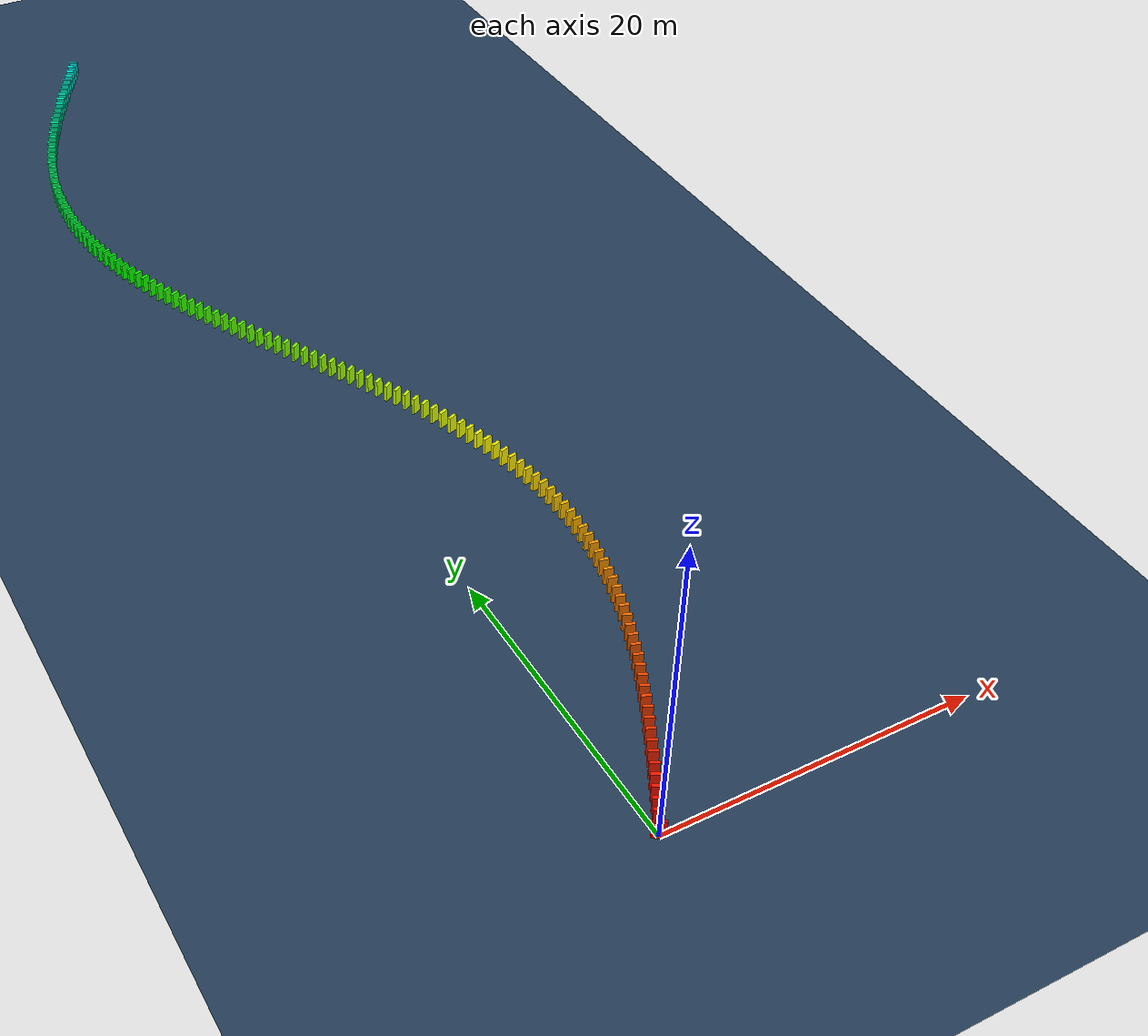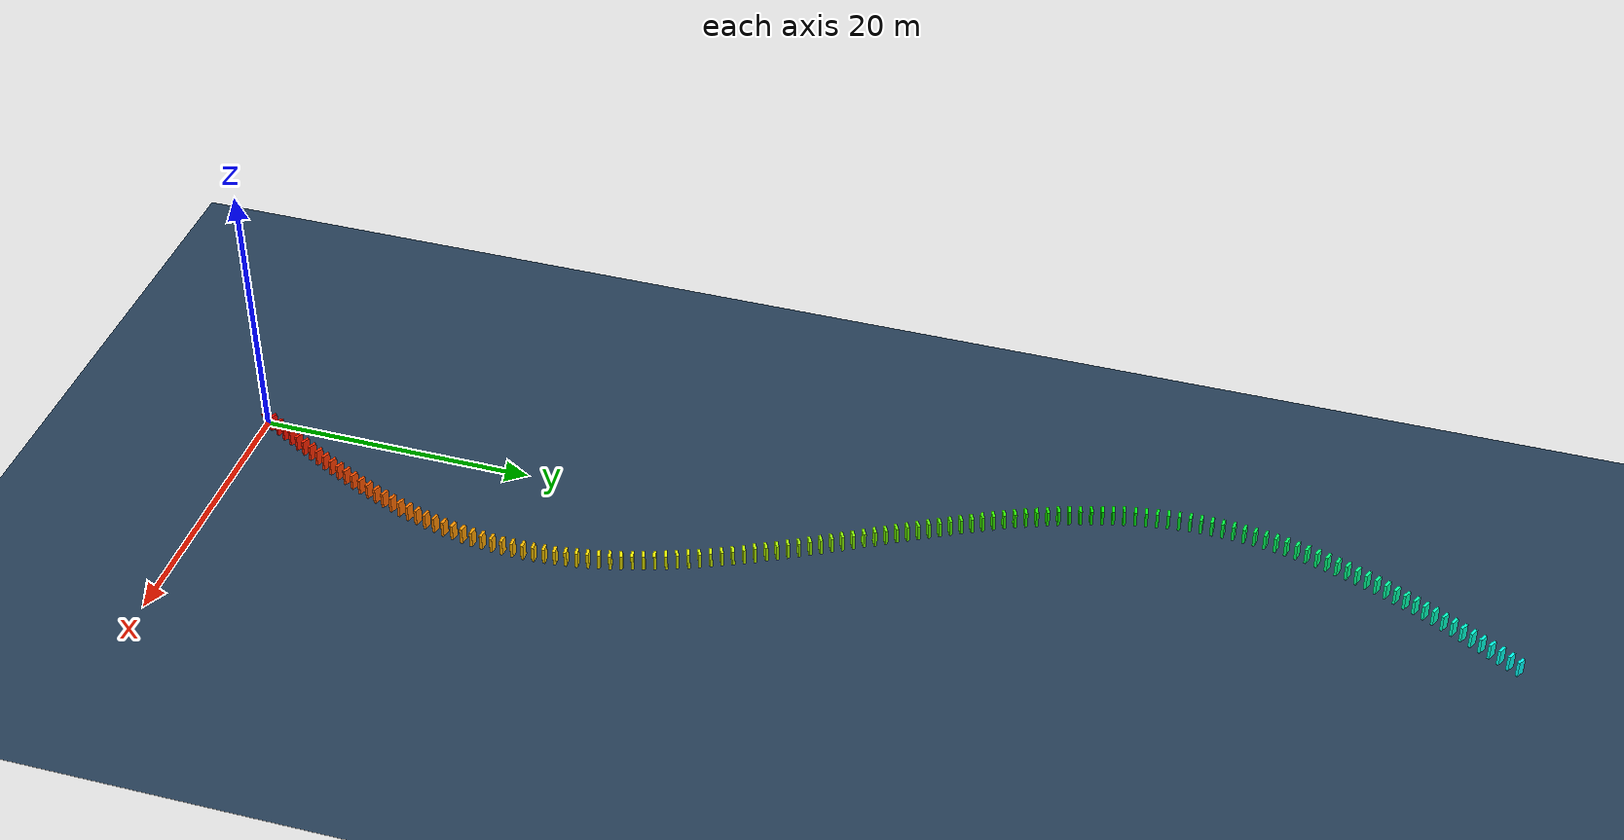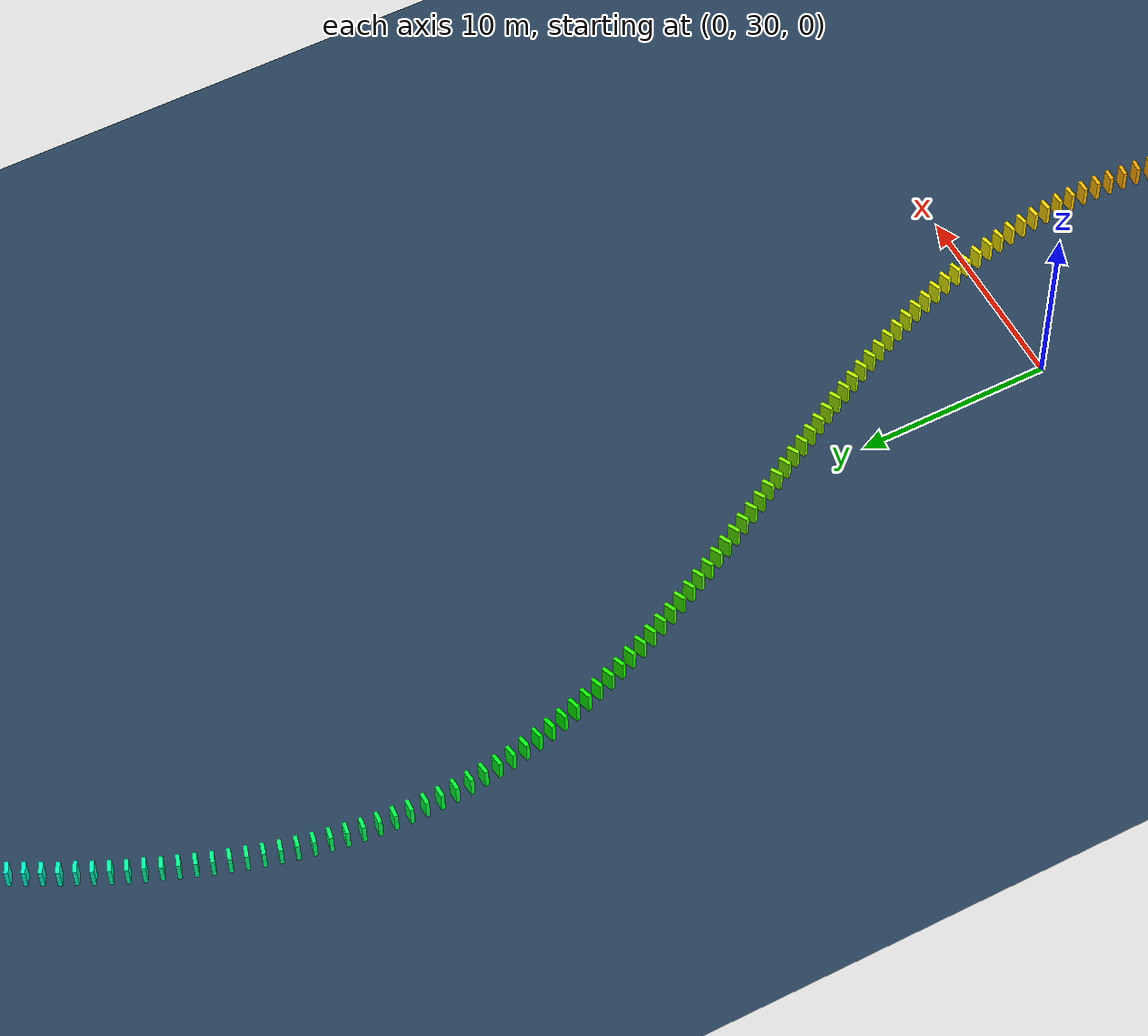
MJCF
<mujoco>
  <visual>
    <headlight diffuse="0.6 0.6 0.6" ambient="0.1 0.1 0.1" specular="0 0 0"/>
    <rgba haze="0.15 0.25 0.35 1"/>
    <global azimuth="120" elevation="-20"/>
  </visual>
  <asset>
    <texture type="skybox" builtin="gradient" rgb1="0.3 0.5 0.7" rgb2="0 0 0" width="512" height="3072"/>
    <texture type="2d" name="groundplane" builtin="checker" mark="edge" rgb1="0.2 0.3 0.4" rgb2="0.1 0.2 0.3" markrgb="0.8 0.8 0.8" width="300" height="300"/>
    <material name="groundplane" texture="groundplane" texuniform="true" texrepeat="5 5" reflectance="0.2"/>
  </asset>
  <worldbody>
    <light pos="0 0 1.5" dir="0 0 -1" directional="true"/>
    <geom name="floor" size="0 0 0.05" type="plane" material="groundplane"/>
    <body pos="0.0000 0.0000 0.6000" euler="0 15.0 60.8">
      <geom type="box" size="0.1000 0.3000 0.6000" rgba="1.000 0.000 0.000 1"/>
      <freejoint/>
    </body>
    <body pos="0.3720 0.6662 0.6000" euler="0 0.0 60.9">
      <geom type="box" size="0.1000 0.3000 0.6000" rgba="1.000 0.024 0.000 1"/>
      <freejoint/>
    </body>
    <body pos="0.7438 1.3337 0.6000" euler="0 0.0 60.9">
      <geom type="box" size="0.1000 0.3000 0.6000" rgba="1.000 0.047 0.000 1"/>
      <freejoint/>
    </body>
    <body pos="1.1144 2.0019 0.6000" euler="0 0.0 61.1">
      <geom type="box" size="0.1000 0.3000 0.6000" rgba="1.000 0.071 0.000 1"/>
      <freejoint/>
    </body>
    <body pos="1.4832 2.6711 0.6000" euler="0 0.0 61.3">
      <geom type="box" size="0.1000 0.3000 0.6000" rgba="1.000 0.094 0.000 1"/>
      <freejoint/>
    </body>
    <body pos="1.8494 3.3416 0.6000" euler="0 0.0 61.5">
      <geom type="box" size="0.1000 0.3000 0.6000" rgba="1.000 0.118 0.000 1"/>
      <freejoint/>
    </body>
    <body pos="2.2126 4.0139 0.6000" euler="0 0.0 61.8">
      <geom type="box" size="0.1000 0.3000 0.6000" rgba="1.000 0.142 0.000 1"/>
      <freejoint/>
    </body>
    <body pos="2.5719 4.6882 0.6000" euler="0 0.0 62.1">
      <geom type="box" size="0.1000 0.3000 0.6000" rgba="1.000 0.165 0.000 1"/>
      <freejoint/>
    </body>
    <body pos="2.9267 5.3649 0.6000" euler="0 0.0 62.5">
      <geom type="box" size="0.1000 0.3000 0.6000" rgba="1.000 0.189 0.000 1"/>
      <freejoint/>
    </body>
    <body pos="3.2764 6.0442 0.6000" euler="0 0.0 63.0">
      <geom type="box" size="0.1000 0.3000 0.6000" rgba="1.000 0.213 0.000 1"/>
      <freejoint/>
    </body>
    <body pos="3.6203 6.7266 0.6000" euler="0 0.0 63.5">
      <geom type="box" size="0.1000 0.3000 0.6000" rgba="1.000 0.236 0.000 1"/>
      <freejoint/>
    </body>
    <body pos="3.9575 7.4122 0.6000" euler="0 0.0 64.1">
      <geom type="box" size="0.1000 0.3000 0.6000" rgba="1.000 0.260 0.000 1"/>
      <freejoint/>
    </body>
    <body pos="4.2873 8.1014 0.6000" euler="0 0.0 64.8">
      <geom type="box" size="0.1000 0.3000 0.6000" rgba="1.000 0.283 0.000 1"/>
      <freejoint/>
    </body>
    <body pos="4.6089 8.7945 0.6000" euler="0 0.0 65.5">
      <geom type="box" size="0.1000 0.3000 0.6000" rgba="1.000 0.307 0.000 1"/>
      <freejoint/>
    </body>
    <body pos="4.9216 9.4916 0.6000" euler="0 0.0 66.2">
      <geom type="box" size="0.1000 0.3000 0.6000" rgba="1.000 0.331 0.000 1"/>
      <freejoint/>
    </body>
    <body pos="5.2245 10.1931 0.6000" euler="0 0.0 67.1">
      <geom type="box" size="0.1000 0.3000 0.6000" rgba="1.000 0.354 0.000 1"/>
      <freejoint/>
    </body>
    <body pos="5.5166 10.8991 0.6000" euler="0 0.0 68.0">
      <geom type="box" size="0.1000 0.3000 0.6000" rgba="1.000 0.378 0.000 1"/>
      <freejoint/>
    </body>
    <body pos="5.7972 11.6098 0.6000" euler="0 0.0 69.0">
      <geom type="box" size="0.1000 0.3000 0.6000" rgba="1.000 0.402 0.000 1"/>
      <freejoint/>
    </body>
    <body pos="6.0652 12.3253 0.6000" euler="0 0.0 70.0">
      <geom type="box" size="0.1000 0.3000 0.6000" rgba="1.000 0.425 0.000 1"/>
      <freejoint/>
    </body>
    <body pos="6.3198 13.0457 0.6000" euler="0 0.0 71.1">
      <geom type="box" size="0.1000 0.3000 0.6000" rgba="1.000 0.449 0.000 1"/>
      <freejoint/>
    </body>
    <body pos="6.5600 13.7710 0.6000" euler="0 0.0 72.3">
      <geom type="box" size="0.1000 0.3000 0.6000" rgba="1.000 0.472 0.000 1"/>
      <freejoint/>
    </body>
    <body pos="6.7848 14.5013 0.6000" euler="0 0.0 73.5">
      <geom type="box" size="0.1000 0.3000 0.6000" rgba="1.000 0.496 0.000 1"/>
      <freejoint/>
    </body>
    <body pos="6.9933 15.2363 0.6000" euler="0 0.0 74.8">
      <geom type="box" size="0.1000 0.3000 0.6000" rgba="1.000 0.520 0.000 1"/>
      <freejoint/>
    </body>
    <body pos="7.1845 15.9761 0.6000" euler="0 0.0 76.2">
      <geom type="box" size="0.1000 0.3000 0.6000" rgba="1.000 0.543 0.000 1"/>
      <freejoint/>
    </body>
    <body pos="7.3575 16.7203 0.6000" euler="0 0.0 77.6">
      <geom type="box" size="0.1000 0.3000 0.6000" rgba="1.000 0.567 0.000 1"/>
      <freejoint/>
    </body>
    <body pos="7.5115 17.4686 0.6000" euler="0 0.0 79.1">
      <geom type="box" size="0.1000 0.3000 0.6000" rgba="1.000 0.591 0.000 1"/>
      <freejoint/>
    </body>
    <body pos="7.6457 18.2208 0.6000" euler="0 0.0 80.7">
      <geom type="box" size="0.1000 0.3000 0.6000" rgba="1.000 0.614 0.000 1"/>
      <freejoint/>
    </body>
    <body pos="7.7592 18.9764 0.6000" euler="0 0.0 82.3">
      <geom type="box" size="0.1000 0.3000 0.6000" rgba="1.000 0.638 0.000 1"/>
      <freejoint/>
    </body>
    <body pos="7.8514 19.7348 0.6000" euler="0 0.0 83.9">
      <geom type="box" size="0.1000 0.3000 0.6000" rgba="1.000 0.661 0.000 1"/>
      <freejoint/>
    </body>
    <body pos="7.9218 20.4956 0.6000" euler="0 0.0 85.5">
      <geom type="box" size="0.1000 0.3000 0.6000" rgba="1.000 0.685 0.000 1"/>
      <freejoint/>
    </body>
    <body pos="7.9700 21.2582 0.6000" euler="0 0.0 87.2">
      <geom type="box" size="0.1000 0.3000 0.6000" rgba="1.000 0.709 0.000 1"/>
      <freejoint/>
    </body>
    <body pos="7.9955 22.0218 0.6000" euler="0 0.0 88.9">
      <geom type="box" size="0.1000 0.3000 0.6000" rgba="1.000 0.732 0.000 1"/>
      <freejoint/>
    </body>
    <body pos="7.9984 22.7858 0.6000" euler="0 0.0 90.6">
      <geom type="box" size="0.1000 0.3000 0.6000" rgba="1.000 0.756 0.000 1"/>
      <freejoint/>
    </body>
    <body pos="7.9785 23.5496 0.6000" euler="0 0.0 92.3">
      <geom type="box" size="0.1000 0.3000 0.6000" rgba="1.000 0.780 0.000 1"/>
      <freejoint/>
    </body>
    <body pos="7.9360 24.3125 0.6000" euler="0 0.0 94.0">
      <geom type="box" size="0.1000 0.3000 0.6000" rgba="1.000 0.803 0.000 1"/>
      <freejoint/>
    </body>
    <body pos="7.8712 25.0737 0.6000" euler="0 0.0 95.7">
      <geom type="box" size="0.1000 0.3000 0.6000" rgba="1.000 0.827 0.000 1"/>
      <freejoint/>
    </body>
    <body pos="7.7844 25.8328 0.6000" euler="0 0.0 97.3">
      <geom type="box" size="0.1000 0.3000 0.6000" rgba="1.000 0.850 0.000 1"/>
      <freejoint/>
    </body>
    <body pos="7.6762 26.5892 0.6000" euler="0 0.0 98.9">
      <geom type="box" size="0.1000 0.3000 0.6000" rgba="1.000 0.874 0.000 1"/>
      <freejoint/>
    </body>
    <body pos="7.5472 27.3422 0.6000" euler="0 0.0 100.5">
      <geom type="box" size="0.1000 0.3000 0.6000" rgba="1.000 0.898 0.000 1"/>
      <freejoint/>
    </body>
    <body pos="7.3982 28.0916 0.6000" euler="0 0.0 102.0">
      <geom type="box" size="0.1000 0.3000 0.6000" rgba="1.000 0.921 0.000 1"/>
      <freejoint/>
    </body>
    <body pos="7.2298 28.8369 0.6000" euler="0 0.0 103.4">
      <geom type="box" size="0.1000 0.3000 0.6000" rgba="1.000 0.945 0.000 1"/>
      <freejoint/>
    </body>
    <body pos="7.0431 29.5778 0.6000" euler="0 0.0 104.8">
      <geom type="box" size="0.1000 0.3000 0.6000" rgba="1.000 0.969 0.000 1"/>
      <freejoint/>
    </body>
    <body pos="6.8389 30.3140 0.6000" euler="0 0.0 106.2">
      <geom type="box" size="0.1000 0.3000 0.6000" rgba="1.000 0.992 0.000 1"/>
      <freejoint/>
    </body>
    <body pos="6.6181 31.0455 0.6000" euler="0 0.0 107.4">
      <geom type="box" size="0.1000 0.3000 0.6000" rgba="0.984 1.000 0.000 1"/>
      <freejoint/>
    </body>
    <body pos="6.3817 31.7720 0.6000" euler="0 0.0 108.6">
      <geom type="box" size="0.1000 0.3000 0.6000" rgba="0.961 1.000 0.000 1"/>
      <freejoint/>
    </body>
    <body pos="6.1306 32.4937 0.6000" euler="0 0.0 109.7">
      <geom type="box" size="0.1000 0.3000 0.6000" rgba="0.937 1.000 0.000 1"/>
      <freejoint/>
    </body>
    <body pos="5.8659 33.2104 0.6000" euler="0 0.0 110.8">
      <geom type="box" size="0.1000 0.3000 0.6000" rgba="0.913 1.000 0.000 1"/>
      <freejoint/>
    </body>
    <body pos="5.5884 33.9223 0.6000" euler="0 0.0 111.8">
      <geom type="box" size="0.1000 0.3000 0.6000" rgba="0.890 1.000 0.000 1"/>
      <freejoint/>
    </body>
    <body pos="5.2991 34.6294 0.6000" euler="0 0.0 112.7">
      <geom type="box" size="0.1000 0.3000 0.6000" rgba="0.866 1.000 0.000 1"/>
      <freejoint/>
    </body>
    <body pos="4.9989 35.3320 0.6000" euler="0 0.0 113.5">
      <geom type="box" size="0.1000 0.3000 0.6000" rgba="0.843 1.000 0.000 1"/>
      <freejoint/>
    </body>
    <body pos="4.6886 36.0303 0.6000" euler="0 0.0 114.3">
      <geom type="box" size="0.1000 0.3000 0.6000" rgba="0.819 1.000 0.000 1"/>
      <freejoint/>
    </body>
    <body pos="4.3691 36.7243 0.6000" euler="0 0.0 115.1">
      <geom type="box" size="0.1000 0.3000 0.6000" rgba="0.795 1.000 0.000 1"/>
      <freejoint/>
    </body>
    <body pos="4.0413 37.4145 0.6000" euler="0 0.0 115.7">
      <geom type="box" size="0.1000 0.3000 0.6000" rgba="0.772 1.000 0.000 1"/>
      <freejoint/>
    </body>
    <body pos="3.7059 38.1010 0.6000" euler="0 0.0 116.3">
      <geom type="box" size="0.1000 0.3000 0.6000" rgba="0.748 1.000 0.000 1"/>
      <freejoint/>
    </body>
    <body pos="3.3637 38.7841 0.6000" euler="0 0.0 116.9">
      <geom type="box" size="0.1000 0.3000 0.6000" rgba="0.724 1.000 0.000 1"/>
      <freejoint/>
    </body>
    <body pos="3.0154 39.4642 0.6000" euler="0 0.0 117.3">
      <geom type="box" size="0.1000 0.3000 0.6000" rgba="0.701 1.000 0.000 1"/>
      <freejoint/>
    </body>
    <body pos="2.6618 40.1415 0.6000" euler="0 0.0 117.8">
      <geom type="box" size="0.1000 0.3000 0.6000" rgba="0.677 1.000 0.000 1"/>
      <freejoint/>
    </body>
    <body pos="2.3035 40.8164 0.6000" euler="0 0.0 118.1">
      <geom type="box" size="0.1000 0.3000 0.6000" rgba="0.654 1.000 0.000 1"/>
      <freejoint/>
    </body>
    <body pos="1.9413 41.4891 0.6000" euler="0 0.0 118.4">
      <geom type="box" size="0.1000 0.3000 0.6000" rgba="0.630 1.000 0.000 1"/>
      <freejoint/>
    </body>
    <body pos="1.5757 42.1601 0.6000" euler="0 0.0 118.7">
      <geom type="box" size="0.1000 0.3000 0.6000" rgba="0.606 1.000 0.000 1"/>
      <freejoint/>
    </body>
    <body pos="1.2076 42.8296 0.6000" euler="0 0.0 118.9">
      <geom type="box" size="0.1000 0.3000 0.6000" rgba="0.583 1.000 0.000 1"/>
      <freejoint/>
    </body>
    <body pos="0.8374 43.4980 0.6000" euler="0 0.0 119.0">
      <geom type="box" size="0.1000 0.3000 0.6000" rgba="0.559 1.000 0.000 1"/>
      <freejoint/>
    </body>
    <body pos="0.4658 44.1656 0.6000" euler="0 0.0 119.1">
      <geom type="box" size="0.1000 0.3000 0.6000" rgba="0.535 1.000 0.000 1"/>
      <freejoint/>
    </body>
    <body pos="0.0934 44.8328 0.6000" euler="0 0.0 119.2">
      <geom type="box" size="0.1000 0.3000 0.6000" rgba="0.512 1.000 0.000 1"/>
      <freejoint/>
    </body>
    <body pos="-0.2791 45.4999 0.6000" euler="0 0.0 119.2">
      <geom type="box" size="0.1000 0.3000 0.6000" rgba="0.488 1.000 0.000 1"/>
      <freejoint/>
    </body>
    <body pos="-0.6512 46.1672 0.6000" euler="0 0.0 119.1">
      <geom type="box" size="0.1000 0.3000 0.6000" rgba="0.465 1.000 0.000 1"/>
      <freejoint/>
    </body>
    <body pos="-1.0222 46.8352 0.6000" euler="0 0.0 119.0">
      <geom type="box" size="0.1000 0.3000 0.6000" rgba="0.441 1.000 0.000 1"/>
      <freejoint/>
    </body>
    <body pos="-1.3914 47.5041 0.6000" euler="0 0.0 118.8">
      <geom type="box" size="0.1000 0.3000 0.6000" rgba="0.417 1.000 0.000 1"/>
      <freejoint/>
    </body>
    <body pos="-1.7584 48.1743 0.6000" euler="0 0.0 118.6">
      <geom type="box" size="0.1000 0.3000 0.6000" rgba="0.394 1.000 0.000 1"/>
      <freejoint/>
    </body>
    <body pos="-2.1224 48.8461 0.6000" euler="0 0.0 118.3">
      <geom type="box" size="0.1000 0.3000 0.6000" rgba="0.370 1.000 0.000 1"/>
      <freejoint/>
    </body>
    <body pos="-2.4827 49.5199 0.6000" euler="0 0.0 118.0">
      <geom type="box" size="0.1000 0.3000 0.6000" rgba="0.346 1.000 0.000 1"/>
      <freejoint/>
    </body>
    <body pos="-2.8387 50.1959 0.6000" euler="0 0.0 117.6">
      <geom type="box" size="0.1000 0.3000 0.6000" rgba="0.323 1.000 0.000 1"/>
      <freejoint/>
    </body>
    <body pos="-3.1898 50.8746 0.6000" euler="0 0.0 117.1">
      <geom type="box" size="0.1000 0.3000 0.6000" rgba="0.299 1.000 0.000 1"/>
      <freejoint/>
    </body>
    <body pos="-3.5351 51.5561 0.6000" euler="0 0.0 116.6">
      <geom type="box" size="0.1000 0.3000 0.6000" rgba="0.276 1.000 0.000 1"/>
      <freejoint/>
    </body>
    <body pos="-3.8740 52.2409 0.6000" euler="0 0.0 116.0">
      <geom type="box" size="0.1000 0.3000 0.6000" rgba="0.252 1.000 0.000 1"/>
      <freejoint/>
    </body>
    <body pos="-4.2058 52.9292 0.6000" euler="0 0.0 115.4">
      <geom type="box" size="0.1000 0.3000 0.6000" rgba="0.228 1.000 0.000 1"/>
      <freejoint/>
    </body>
    <body pos="-4.5295 53.6213 0.6000" euler="0 0.0 114.7">
      <geom type="box" size="0.1000 0.3000 0.6000" rgba="0.205 1.000 0.000 1"/>
      <freejoint/>
    </body>
    <body pos="-4.8445 54.3174 0.6000" euler="0 0.0 114.0">
      <geom type="box" size="0.1000 0.3000 0.6000" rgba="0.181 1.000 0.000 1"/>
      <freejoint/>
    </body>
    <body pos="-5.1499 55.0178 0.6000" euler="0 0.0 113.1">
      <geom type="box" size="0.1000 0.3000 0.6000" rgba="0.157 1.000 0.000 1"/>
      <freejoint/>
    </body>
    <body pos="-5.4448 55.7227 0.6000" euler="0 0.0 112.2">
      <geom type="box" size="0.1000 0.3000 0.6000" rgba="0.134 1.000 0.000 1"/>
      <freejoint/>
    </body>
    <body pos="-5.7283 56.4322 0.6000" euler="0 0.0 111.3">
      <geom type="box" size="0.1000 0.3000 0.6000" rgba="0.110 1.000 0.000 1"/>
      <freejoint/>
    </body>
    <body pos="-5.9996 57.1465 0.6000" euler="0 0.0 110.3">
      <geom type="box" size="0.1000 0.3000 0.6000" rgba="0.087 1.000 0.000 1"/>
      <freejoint/>
    </body>
    <body pos="-6.2576 57.8656 0.6000" euler="0 0.0 109.2">
      <geom type="box" size="0.1000 0.3000 0.6000" rgba="0.063 1.000 0.000 1"/>
      <freejoint/>
    </body>
    <body pos="-6.5015 58.5897 0.6000" euler="0 0.0 108.0">
      <geom type="box" size="0.1000 0.3000 0.6000" rgba="0.039 1.000 0.000 1"/>
      <freejoint/>
    </body>
    <body pos="-6.7302 59.3188 0.6000" euler="0 0.0 106.8">
      <geom type="box" size="0.1000 0.3000 0.6000" rgba="0.016 1.000 0.000 1"/>
      <freejoint/>
    </body>
    <body pos="-6.9429 60.0526 0.6000" euler="0 0.0 105.5">
      <geom type="box" size="0.1000 0.3000 0.6000" rgba="0.000 1.000 0.008 1"/>
      <freejoint/>
    </body>
    <body pos="-7.1385 60.7912 0.6000" euler="0 0.0 104.1">
      <geom type="box" size="0.1000 0.3000 0.6000" rgba="0.000 1.000 0.031 1"/>
      <freejoint/>
    </body>
    <body pos="-7.3161 61.5343 0.6000" euler="0 0.0 102.7">
      <geom type="box" size="0.1000 0.3000 0.6000" rgba="0.000 1.000 0.055 1"/>
      <freejoint/>
    </body>
    <body pos="-7.4750 62.2817 0.6000" euler="0 0.0 101.2">
      <geom type="box" size="0.1000 0.3000 0.6000" rgba="0.000 1.000 0.079 1"/>
      <freejoint/>
    </body>
    <body pos="-7.6141 63.0330 0.6000" euler="0 0.0 99.7">
      <geom type="box" size="0.1000 0.3000 0.6000" rgba="0.000 1.000 0.102 1"/>
      <freejoint/>
    </body>
    <body pos="-7.7328 63.7877 0.6000" euler="0 0.0 98.1">
      <geom type="box" size="0.1000 0.3000 0.6000" rgba="0.000 1.000 0.126 1"/>
      <freejoint/>
    </body>
    <body pos="-7.8304 64.5455 0.6000" euler="0 0.0 96.5">
      <geom type="box" size="0.1000 0.3000 0.6000" rgba="0.000 1.000 0.150 1"/>
      <freejoint/>
    </body>
    <body pos="-7.9063 65.3058 0.6000" euler="0 0.0 94.9">
      <geom type="box" size="0.1000 0.3000 0.6000" rgba="0.000 1.000 0.173 1"/>
      <freejoint/>
    </body>
    <body pos="-7.9601 66.0679 0.6000" euler="0 0.0 93.2">
      <geom type="box" size="0.1000 0.3000 0.6000" rgba="0.000 1.000 0.197 1"/>
      <freejoint/>
    </body>
    <body pos="-7.9913 66.8313 0.6000" euler="0 0.0 91.5">
      <geom type="box" size="0.1000 0.3000 0.6000" rgba="0.000 1.000 0.220 1"/>
      <freejoint/>
    </body>
    <body pos="-7.9998 67.5953 0.6000" euler="0 0.0 89.8">
      <geom type="box" size="0.1000 0.3000 0.6000" rgba="0.000 1.000 0.244 1"/>
      <freejoint/>
    </body>
    <body pos="-7.9856 68.3592 0.6000" euler="0 0.0 88.1">
      <geom type="box" size="0.1000 0.3000 0.6000" rgba="0.000 1.000 0.268 1"/>
      <freejoint/>
    </body>
    <body pos="-7.9487 69.1224 0.6000" euler="0 0.0 86.4">
      <geom type="box" size="0.1000 0.3000 0.6000" rgba="0.000 1.000 0.291 1"/>
      <freejoint/>
    </body>
    <body pos="-7.8894 69.8841 0.6000" euler="0 0.0 84.7">
      <geom type="box" size="0.1000 0.3000 0.6000" rgba="0.000 1.000 0.315 1"/>
      <freejoint/>
    </body>
    <body pos="-7.8081 70.6438 0.6000" euler="0 0.0 83.1">
      <geom type="box" size="0.1000 0.3000 0.6000" rgba="0.000 1.000 0.339 1"/>
      <freejoint/>
    </body>
    <body pos="-7.7052 71.4009 0.6000" euler="0 0.0 81.5">
      <geom type="box" size="0.1000 0.3000 0.6000" rgba="0.000 1.000 0.362 1"/>
      <freejoint/>
    </body>
    <body pos="-7.5813 72.1548 0.6000" euler="0 0.0 79.9">
      <geom type="box" size="0.1000 0.3000 0.6000" rgba="0.000 1.000 0.386 1"/>
      <freejoint/>
    </body>
    <body pos="-7.4372 72.9051 0.6000" euler="0 0.0 78.4">
      <geom type="box" size="0.1000 0.3000 0.6000" rgba="0.000 1.000 0.409 1"/>
      <freejoint/>
    </body>
    <body pos="-7.2735 73.6515 0.6000" euler="0 0.0 76.9">
      <geom type="box" size="0.1000 0.3000 0.6000" rgba="0.000 1.000 0.433 1"/>
      <freejoint/>
    </body>
    <body pos="-7.0913 74.3935 0.6000" euler="0 0.0 75.5">
      <geom type="box" size="0.1000 0.3000 0.6000" rgba="0.000 1.000 0.457 1"/>
      <freejoint/>
    </body>
    <body pos="-6.8914 75.1309 0.6000" euler="0 0.0 74.2">
      <geom type="box" size="0.1000 0.3000 0.6000" rgba="0.000 1.000 0.480 1"/>
      <freejoint/>
    </body>
    <body pos="-6.6746 75.8635 0.6000" euler="0 0.0 72.9">
      <geom type="box" size="0.1000 0.3000 0.6000" rgba="0.000 1.000 0.504 1"/>
      <freejoint/>
    </body>
    <body pos="-6.4420 76.5913 0.6000" euler="0 0.0 71.7">
      <geom type="box" size="0.1000 0.3000 0.6000" rgba="0.000 1.000 0.528 1"/>
      <freejoint/>
    </body>
    <body pos="-6.1945 77.3142 0.6000" euler="0 0.0 70.5">
      <geom type="box" size="0.1000 0.3000 0.6000" rgba="0.000 1.000 0.551 1"/>
      <freejoint/>
    </body>
    <body pos="-5.9331 78.0321 0.6000" euler="0 0.0 69.5">
      <geom type="box" size="0.1000 0.3000 0.6000" rgba="0.000 1.000 0.575 1"/>
      <freejoint/>
    </body>
    <body pos="-5.6587 78.7452 0.6000" euler="0 0.0 68.5">
      <geom type="box" size="0.1000 0.3000 0.6000" rgba="0.000 1.000 0.598 1"/>
      <freejoint/>
    </body>
    <body pos="-5.3723 79.4536 0.6000" euler="0 0.0 67.5">
      <geom type="box" size="0.1000 0.3000 0.6000" rgba="0.000 1.000 0.622 1"/>
      <freejoint/>
    </body>
    <body pos="-5.0747 80.1573 0.6000" euler="0 0.0 66.7">
      <geom type="box" size="0.1000 0.3000 0.6000" rgba="0.000 1.000 0.646 1"/>
      <freejoint/>
    </body>
    <body pos="-4.7669 80.8566 0.6000" euler="0 0.0 65.9">
      <geom type="box" size="0.1000 0.3000 0.6000" rgba="0.000 1.000 0.669 1"/>
      <freejoint/>
    </body>
    <body pos="-4.4496 81.5516 0.6000" euler="0 0.0 65.1">
      <geom type="box" size="0.1000 0.3000 0.6000" rgba="0.000 1.000 0.693 1"/>
      <freejoint/>
    </body>
    <body pos="-4.1238 82.2428 0.6000" euler="0 0.0 64.4">
      <geom type="box" size="0.1000 0.3000 0.6000" rgba="0.000 1.000 0.717 1"/>
      <freejoint/>
    </body>
    <body pos="-3.7902 82.9301 0.6000" euler="0 0.0 63.8">
      <geom type="box" size="0.1000 0.3000 0.6000" rgba="0.000 1.000 0.740 1"/>
      <freejoint/>
    </body>
    <body pos="-3.4496 83.6141 0.6000" euler="0 0.0 63.3">
      <geom type="box" size="0.1000 0.3000 0.6000" rgba="0.000 1.000 0.764 1"/>
      <freejoint/>
    </body>
    <body pos="-3.1027 84.2949 0.6000" euler="0 0.0 62.8">
      <geom type="box" size="0.1000 0.3000 0.6000" rgba="0.000 1.000 0.787 1"/>
      <freejoint/>
    </body>
    <body pos="-2.7504 84.9729 0.6000" euler="0 0.0 62.3">
      <geom type="box" size="0.1000 0.3000 0.6000" rgba="0.000 1.000 0.811 1"/>
      <freejoint/>
    </body>
    <body pos="-2.3932 85.6483 0.6000" euler="0 0.0 62.0">
      <geom type="box" size="0.1000 0.3000 0.6000" rgba="0.000 1.000 0.835 1"/>
      <freejoint/>
    </body>
    <body pos="-2.0319 86.3216 0.6000" euler="0 0.0 61.6">
      <geom type="box" size="0.1000 0.3000 0.6000" rgba="0.000 1.000 0.858 1"/>
      <freejoint/>
    </body>
    <body pos="-1.6672 86.9929 0.6000" euler="0 0.0 61.4">
      <geom type="box" size="0.1000 0.3000 0.6000" rgba="0.000 1.000 0.882 1"/>
      <freejoint/>
    </body>
    <body pos="-1.2996 87.6628 0.6000" euler="0 0.0 61.2">
      <geom type="box" size="0.1000 0.3000 0.6000" rgba="0.000 1.000 0.906 1"/>
      <freejoint/>
    </body>
    <body pos="-0.9298 88.3314 0.6000" euler="0 0.0 61.0">
      <geom type="box" size="0.1000 0.3000 0.6000" rgba="0.000 1.000 0.929 1"/>
      <freejoint/>
    </body>
    <body pos="-0.5585 88.9992 0.6000" euler="0 0.0 60.9">
      <geom type="box" size="0.1000 0.3000 0.6000" rgba="0.000 1.000 0.953 1"/>
      <freejoint/>
    </body>
    <body pos="-0.1863 89.6665 0.6000" euler="0 0.0 60.8">
      <geom type="box" size="0.1000 0.3000 0.6000" rgba="0.000 1.000 0.976 1"/>
      <freejoint/>
    </body>
  </worldbody>
</mujoco>
